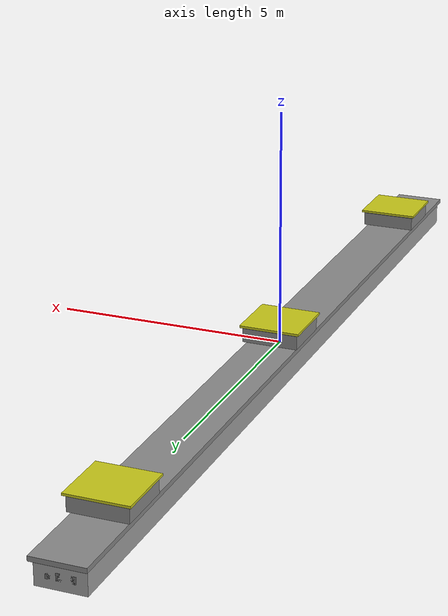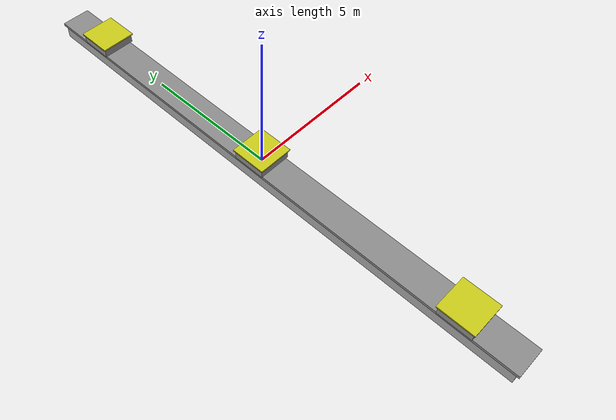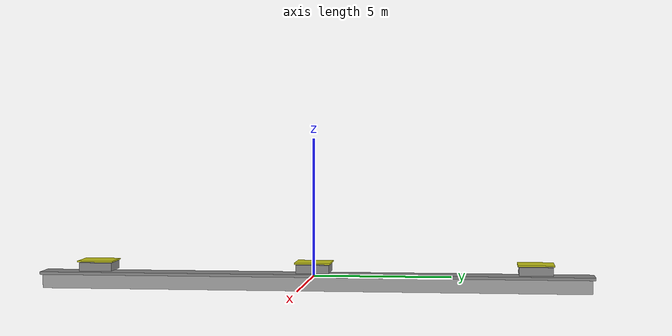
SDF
<?xml version="1.0"?>

<sdf version="1.10">

<model name="cable_trench">

  <static>true</static>

  <link name="link">

    <!-- CONCRETE TRENCH BODY -->
    <visual name="trench_main">
      <pose>0 0 -0.25 0 0 0</pose>
      <geometry>
        <box>
          <size>1.0 20.0 0.5</size>
        </box>
      </geometry>
      <material>
        <ambient>0.6 0.6 0.6 1</ambient>
        <diffuse>0.65 0.65 0.65 1</diffuse>
        <specular>0.1 0.1 0.1 1</specular>
      </material>
    </visual>

    <!-- CABLE DUCT LINERS -->
    <visual name="duct_left">
      <pose>-0.2 0 -0.25 0 0 0</pose>
      <geometry>
        <box>
          <size>0.18 20.0 0.15</size>
        </box>
      </geometry>
      <material>
        <ambient>0.4 0.4 0.4 1</ambient>
        <diffuse>0.45 0.45 0.45 1</diffuse>
      </material>
    </visual>

    <visual name="duct_center">
      <pose>0 0 -0.25 0 0 0</pose>
      <geometry>
        <box>
          <size>0.18 20.0 0.15</size>
        </box>
      </geometry>
      <material>
        <ambient>0.4 0.4 0.4 1</ambient>
        <diffuse>0.45 0.45 0.45 1</diffuse>
      </material>
    </visual>

    <visual name="duct_right">
      <pose>0.2 0 -0.25 0 0 0</pose>
      <geometry>
        <box>
          <size>0.18 20.0 0.15</size>
        </box>
      </geometry>
      <material>
        <ambient>0.4 0.4 0.4 1</ambient>
        <diffuse>0.45 0.45 0.45 1</diffuse>
      </material>
    </visual>

    <!-- TRENCH COVER (GRATE) -->
    <visual name="cover_main">
      <pose>0 0 0.05 0 0 0</pose>
      <geometry>
        <box>
          <size>1.1 20.2 0.1</size>
        </box>
      </geometry>
      <material>
        <ambient>0.5 0.5 0.5 1</ambient>
        <diffuse>0.55 0.55 0.55 1</diffuse>
      </material>
    </visual>

    <!-- GRATING PATTERN -->
    <visual name="grate_line_1">
      <pose>-0.3 0 0.06 0 0 0</pose>
      <geometry>
        <box>
          <size>0.05 20.0 0.05</size>
        </box>
      </geometry>
      <material>
        <ambient>0.4 0.4 0.4 1</ambient>
        <diffuse>0.45 0.45 0.45 1</diffuse>
      </material>
    </visual>

    <visual name="grate_line_2">
      <pose>0 0 0.06 0 0 0</pose>
      <geometry>
        <box>
          <size>0.05 20.0 0.05</size>
        </box>
      </geometry>
      <material>
        <ambient>0.4 0.4 0.4 1</ambient>
        <diffuse>0.45 0.45 0.45 1</diffuse>
      </material>
    </visual>

    <visual name="grate_line_3">
      <pose>0.3 0 0.06 0 0 0</pose>
      <geometry>
        <box>
          <size>0.05 20.0 0.05</size>
        </box>
      </geometry>
      <material>
        <ambient>0.4 0.4 0.4 1</ambient>
        <diffuse>0.45 0.45 0.45 1</diffuse>
      </material>
    </visual>

    <!-- ACCESS JUNCTION BOX 1 -->
    <visual name="junction_1_body">
      <pose>0 -8 0.3 0 0 0</pose>
      <geometry>
        <box>
          <size>1.2 1.2 0.3</size>
        </box>
      </geometry>
      <material>
        <ambient>0.5 0.5 0.5 1</ambient>
        <diffuse>0.55 0.55 0.55 1</diffuse>
      </material>
    </visual>

    <visual name="junction_1_cover">
      <pose>0 -8 0.5 0 0 0</pose>
      <geometry>
        <box>
          <size>1.3 1.3 0.05</size>
        </box>
      </geometry>
      <material>
        <ambient>0.7 0.7 0 1</ambient>
        <diffuse>0.8 0.8 0.1 1</diffuse>
      </material>
    </visual>

    <!-- ACCESS JUNCTION BOX 2 -->
    <visual name="junction_2_body">
      <pose>0 0 0.3 0 0 0</pose>
      <geometry>
        <box>
          <size>1.2 1.2 0.3</size>
        </box>
      </geometry>
      <material>
        <ambient>0.5 0.5 0.5 1</ambient>
        <diffuse>0.55 0.55 0.55 1</diffuse>
      </material>
    </visual>

    <visual name="junction_2_cover">
      <pose>0 0 0.5 0 0 0</pose>
      <geometry>
        <box>
          <size>1.3 1.3 0.05</size>
        </box>
      </geometry>
      <material>
        <ambient>0.7 0.7 0 1</ambient>
        <diffuse>0.8 0.8 0.1 1</diffuse>
      </material>
    </visual>

    <!-- ACCESS JUNCTION BOX 3 -->
    <visual name="junction_3_body">
      <pose>0 8 0.3 0 0 0</pose>
      <geometry>
        <box>
          <size>1.2 1.2 0.3</size>
        </box>
      </geometry>
      <material>
        <ambient>0.5 0.5 0.5 1</ambient>
        <diffuse>0.55 0.55 0.55 1</diffuse>
      </material>
    </visual>

    <visual name="junction_3_cover">
      <pose>0 8 0.5 0 0 0</pose>
      <geometry>
        <box>
          <size>1.3 1.3 0.05</size>
        </box>
      </geometry>
      <material>
        <ambient>0.7 0.7 0 1</ambient>
        <diffuse>0.8 0.8 0.1 1</diffuse>
      </material>
    </visual>

    <!-- COLLISION -->
    <collision name="trench_collision">
      <pose>0 0 -0.25 0 0 0</pose>
      <geometry>
        <box>
          <size>1.0 20.0 0.5</size>
        </box>
      </geometry>
    </collision>

    <collision name="cover_collision">
      <pose>0 0 0.05 0 0 0</pose>
      <geometry>
        <box>
          <size>1.1 20.2 0.1</size>
        </box>
      </geometry>
    </collision>

  </link>

</model>

</sdf>
